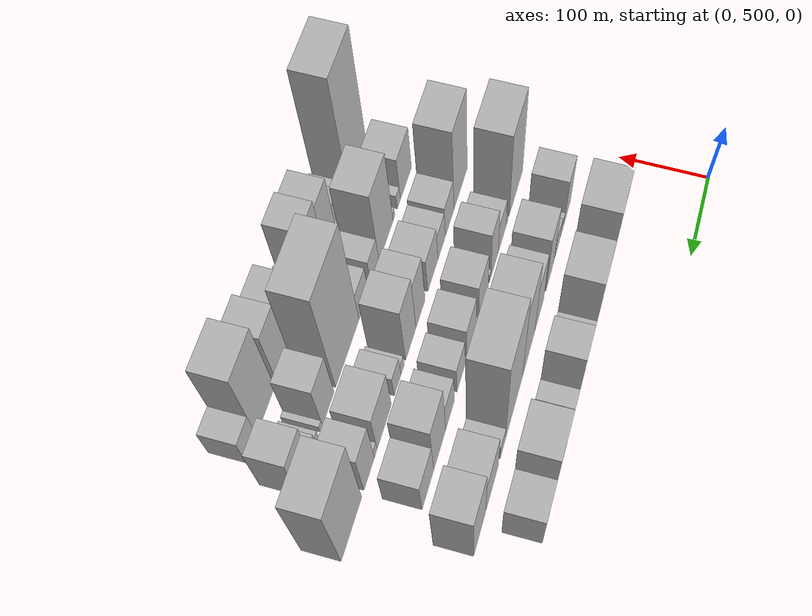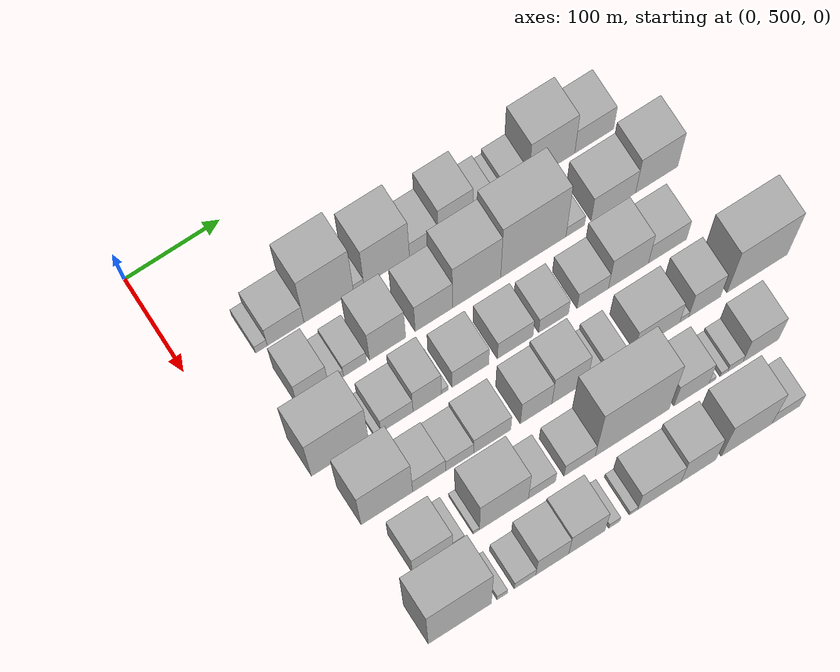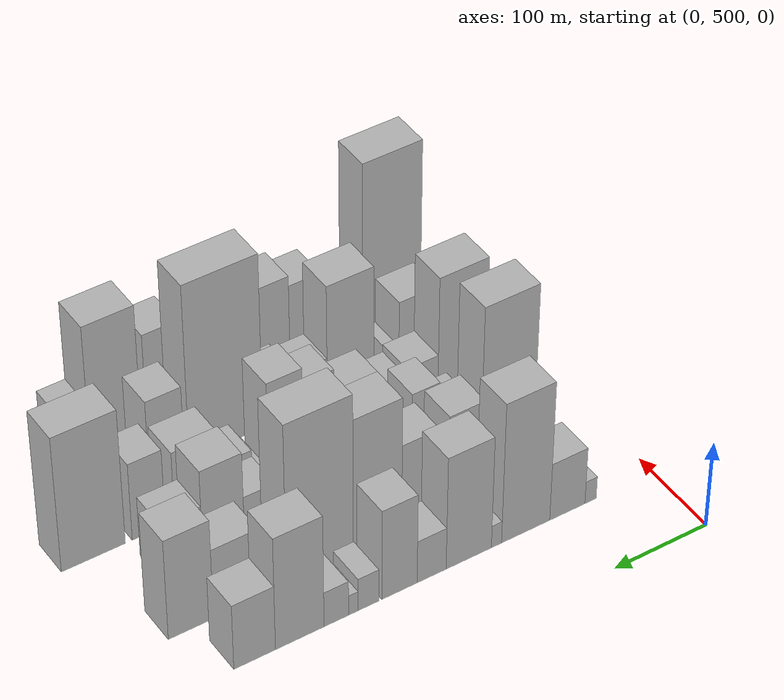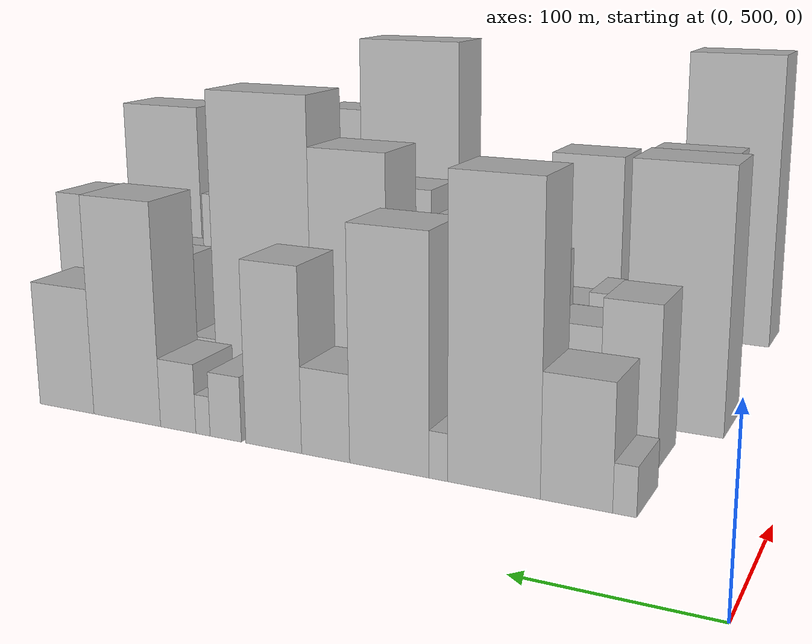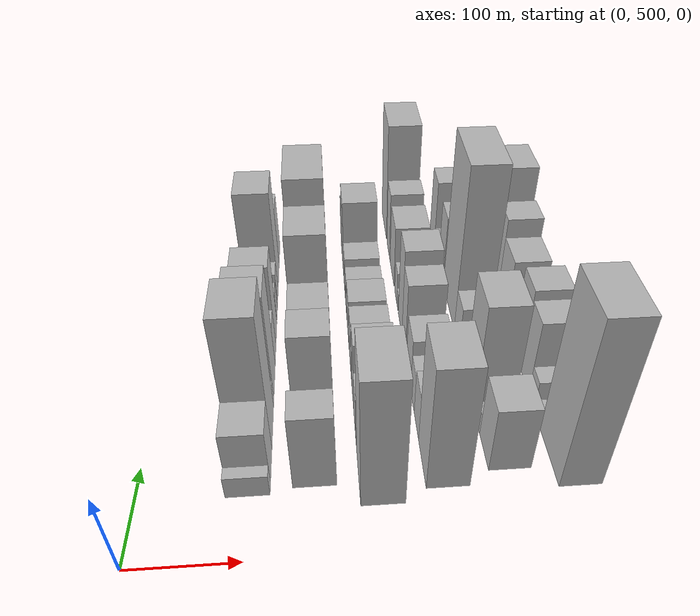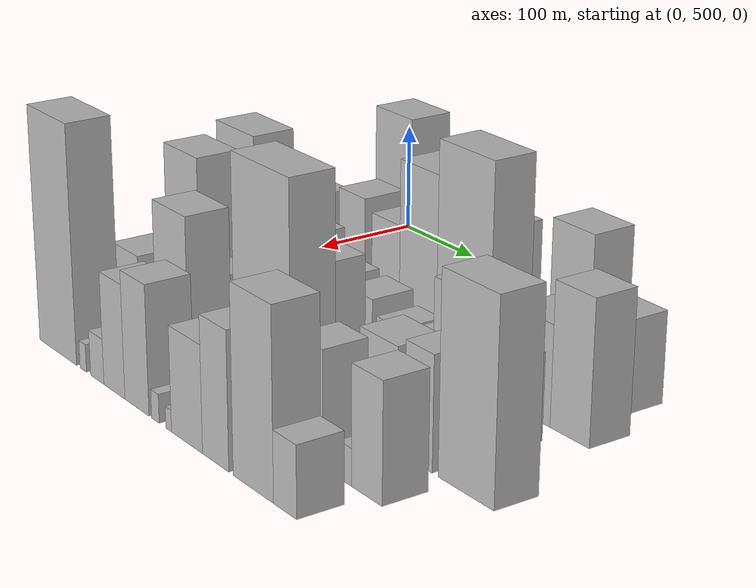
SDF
<sdf version="1.6">
 <world name="default">
  <model name="building_51">
   <static>1</static>
   <pose>100.0000 568.8188 0 0.000000 0.000000 0.000000</pose>
   <link name="link">
    <pose>0 0 13.50 0 0 0</pose>
    <collision name="collision"><geometry><box><size>40.0000 12.3887 27.0000</size></box></geometry></collision>
    <visual name="visual">
     <cast_shadows>0</cast_shadows>
     <geometry><box><size>40.0000 12.3887 27.0000</size></box></geometry>
     <material>
      <script>
       <uri>model://HANNAS_wall/materials/scripts</uri>
       <uri>model://HANNAS_wall/materials/textures</uri>
       <name>vrc/HANNAS_wall</name>
      </script>
     </material>
    </visual>
   </link>
  </model>
  <model name="building_52">
   <static>1</static>
   <pose>100.0000 594.2181 0 0.000000 0.000000 0.000000</pose>
   <link name="link">
    <pose>0 0 34.50 0 0 0</pose>
    <collision name="collision"><geometry><box><size>40.0000 38.4099 69.0000</size></box></geometry></collision>
    <visual name="visual">
     <cast_shadows>0</cast_shadows>
     <geometry><box><size>40.0000 38.4099 69.0000</size></box></geometry>
     <material>
      <script>
       <uri>model://HANNAS_wall/materials/scripts</uri>
       <uri>model://HANNAS_wall/materials/textures</uri>
       <name>vrc/HANNAS_wall</name>
      </script>
     </material>
    </visual>
   </link>
  </model>
  <model name="building_53">
   <static>1</static>
   <pose>100.0000 639.3999 0 0.000000 0.000000 0.000000</pose>
   <link name="link">
    <pose>0 0 84.00 0 0 0</pose>
    <collision name="collision"><geometry><box><size>40.0000 51.9538 168.0000</size></box></geometry></collision>
    <visual name="visual">
     <cast_shadows>0</cast_shadows>
     <geometry><box><size>40.0000 51.9538 168.0000</size></box></geometry>
     <material>
      <script>
       <uri>model://HANNAS_wall/materials/scripts</uri>
       <uri>model://HANNAS_wall/materials/textures</uri>
       <name>vrc/HANNAS_wall</name>
      </script>
     </material>
    </visual>
   </link>
  </model>
  <model name="building_54">
   <static>1</static>
   <pose>100.0000 670.7902 0 0.000000 0.000000 0.000000</pose>
   <link name="link">
    <pose>0 0 13.50 0 0 0</pose>
    <collision name="collision"><geometry><box><size>40.0000 10.8269 27.0000</size></box></geometry></collision>
    <visual name="visual">
     <cast_shadows>0</cast_shadows>
     <geometry><box><size>40.0000 10.8269 27.0000</size></box></geometry>
     <material>
      <script>
       <uri>model://HANNAS_wall/materials/scripts</uri>
       <uri>model://HANNAS_wall/materials/textures</uri>
       <name>vrc/HANNAS_wall</name>
      </script>
     </material>
    </visual>
   </link>
  </model>
  <model name="building_55">
   <static>1</static>
   <pose>100.0000 700.2312 0 0.000000 0.000000 0.000000</pose>
   <link name="link">
    <pose>0 0 67.50 0 0 0</pose>
    <collision name="collision"><geometry><box><size>40.0000 48.0550 135.0000</size></box></geometry></collision>
    <visual name="visual">
     <cast_shadows>0</cast_shadows>
     <geometry><box><size>40.0000 48.0550 135.0000</size></box></geometry>
     <material>
      <script>
       <uri>model://HANNAS_wall/materials/scripts</uri>
       <uri>model://HANNAS_wall/materials/textures</uri>
       <name>vrc/HANNAS_wall</name>
      </script>
     </material>
    </visual>
   </link>
  </model>
  <model name="building_56">
   <static>1</static>
   <pose>100.0000 739.4798 0 0.000000 0.000000 0.000000</pose>
   <link name="link">
    <pose>0 0 25.50 0 0 0</pose>
    <collision name="collision"><geometry><box><size>40.0000 30.4422 51.0000</size></box></geometry></collision>
    <visual name="visual">
     <cast_shadows>0</cast_shadows>
     <geometry><box><size>40.0000 30.4422 51.0000</size></box></geometry>
     <material>
      <script>
       <uri>model://HANNAS_wall/materials/scripts</uri>
       <uri>model://HANNAS_wall/materials/textures</uri>
       <name>vrc/HANNAS_wall</name>
      </script>
     </material>
    </visual>
   </link>
  </model>
  <model name="building_57">
   <static>1</static>
   <pose>100.0000 773.0551 0 0.000000 0.000000 0.000000</pose>
   <link name="link">
    <pose>0 0 54.00 0 0 0</pose>
    <collision name="collision"><geometry><box><size>40.0000 36.7085 108.0000</size></box></geometry></collision>
    <visual name="visual">
     <cast_shadows>0</cast_shadows>
     <geometry><box><size>40.0000 36.7085 108.0000</size></box></geometry>
     <material>
      <script>
       <uri>model://HANNAS_wall/materials/scripts</uri>
       <uri>model://HANNAS_wall/materials/textures</uri>
       <name>vrc/HANNAS_wall</name>
      </script>
     </material>
    </visual>
   </link>
  </model>
  <model name="building_58">
   <static>1</static>
   <pose>100.0000 805.1073 0 0.000000 0.000000 0.000000</pose>
   <link name="link">
    <pose>0 0 19.50 0 0 0</pose>
    <collision name="collision"><geometry><box><size>40.0000 21.3959 39.0000</size></box></geometry></collision>
    <visual name="visual">
     <cast_shadows>0</cast_shadows>
     <geometry><box><size>40.0000 21.3959 39.0000</size></box></geometry>
     <material>
      <script>
       <uri>model://HANNAS_wall/materials/scripts</uri>
       <uri>model://HANNAS_wall/materials/textures</uri>
       <name>vrc/HANNAS_wall</name>
      </script>
     </material>
    </visual>
   </link>
  </model>
  <model name="building_59">
   <static>1</static>
   <pose>100.0000 820.7397 0 0.000000 0.000000 0.000000</pose>
   <link name="link">
    <pose>0 0 12.00 0 0 0</pose>
    <collision name="collision"><geometry><box><size>40.0000 9.8689 24.0000</size></box></geometry></collision>
    <visual name="visual">
     <cast_shadows>0</cast_shadows>
     <geometry><box><size>40.0000 9.8689 24.0000</size></box></geometry>
     <material>
      <script>
       <uri>model://HANNAS_wall/materials/scripts</uri>
       <uri>model://HANNAS_wall/materials/textures</uri>
       <name>vrc/HANNAS_wall</name>
      </script>
     </material>
    </visual>
   </link>
  </model>
  <model name="building_60">
   <static>1</static>
   <pose>100.0000 838.1900 0 0.000000 0.000000 0.000000</pose>
   <link name="link">
    <pose>0 0 21.00 0 0 0</pose>
    <collision name="collision"><geometry><box><size>40.0000 25.0318 42.0000</size></box></geometry></collision>
    <visual name="visual">
     <cast_shadows>0</cast_shadows>
     <geometry><box><size>40.0000 25.0318 42.0000</size></box></geometry>
     <material>
      <script>
       <uri>model://HANNAS_wall/materials/scripts</uri>
       <uri>model://HANNAS_wall/materials/textures</uri>
       <name>vrc/HANNAS_wall</name>
      </script>
     </material>
    </visual>
   </link>
  </model>
  <model name="building_61">
   <static>1</static>
   <pose>100.0000 875.2933 0 0.000000 0.000000 0.000000</pose>
   <link name="link">
    <pose>0 0 67.50 0 0 0</pose>
    <collision name="collision"><geometry><box><size>40.0000 49.1748 135.0000</size></box></geometry></collision>
    <visual name="visual">
     <cast_shadows>0</cast_shadows>
     <geometry><box><size>40.0000 49.1748 135.0000</size></box></geometry>
     <material>
      <script>
       <uri>model://HANNAS_wall/materials/scripts</uri>
       <uri>model://HANNAS_wall/materials/textures</uri>
       <name>vrc/HANNAS_wall</name>
      </script>
     </material>
    </visual>
   </link>
  </model>
  <model name="building_62">
   <static>1</static>
   <pose>100.0000 920.6999 0 0.000000 0.000000 0.000000</pose>
   <link name="link">
    <pose>0 0 39.00 0 0 0</pose>
    <collision name="collision"><geometry><box><size>40.0000 41.6384 78.0000</size></box></geometry></collision>
    <visual name="visual">
     <cast_shadows>0</cast_shadows>
     <geometry><box><size>40.0000 41.6384 78.0000</size></box></geometry>
     <material>
      <script>
       <uri>model://HANNAS_wall/materials/scripts</uri>
       <uri>model://HANNAS_wall/materials/textures</uri>
       <name>vrc/HANNAS_wall</name>
      </script>
     </material>
    </visual>
   </link>
  </model>
  <model name="building_109">
   <static>1</static>
   <pose>160.0000 584.9120 0 0.000000 0.000000 0.000000</pose>
   <link name="link">
    <pose>0 0 46.50 0 0 0</pose>
    <collision name="collision"><geometry><box><size>40.0000 32.8877 93.0000</size></box></geometry></collision>
    <visual name="visual">
     <cast_shadows>0</cast_shadows>
     <geometry><box><size>40.0000 32.8877 93.0000</size></box></geometry>
     <material>
      <script>
       <uri>model://HANNAS_wall/materials/scripts</uri>
       <uri>model://HANNAS_wall/materials/textures</uri>
       <name>vrc/HANNAS_wall</name>
      </script>
     </material>
    </visual>
   </link>
  </model>
  <model name="building_110">
   <static>1</static>
   <pose>160.0000 609.1690 0 0.000000 0.000000 0.000000</pose>
   <link name="link">
    <pose>0 0 15.00 0 0 0</pose>
    <collision name="collision"><geometry><box><size>40.0000 15.6263 30.0000</size></box></geometry></collision>
    <visual name="visual">
     <cast_shadows>0</cast_shadows>
     <geometry><box><size>40.0000 15.6263 30.0000</size></box></geometry>
     <material>
      <script>
       <uri>model://HANNAS_wall/materials/scripts</uri>
       <uri>model://HANNAS_wall/materials/textures</uri>
       <name>vrc/HANNAS_wall</name>
      </script>
     </material>
    </visual>
   </link>
  </model>
  <model name="building_111">
   <static>1</static>
   <pose>160.0000 629.0480 0 0.000000 0.000000 0.000000</pose>
   <link name="link">
    <pose>0 0 22.50 0 0 0</pose>
    <collision name="collision"><geometry><box><size>40.0000 24.1317 45.0000</size></box></geometry></collision>
    <visual name="visual">
     <cast_shadows>0</cast_shadows>
     <geometry><box><size>40.0000 24.1317 45.0000</size></box></geometry>
     <material>
      <script>
       <uri>model://HANNAS_wall/materials/scripts</uri>
       <uri>model://HANNAS_wall/materials/textures</uri>
       <name>vrc/HANNAS_wall</name>
      </script>
     </material>
    </visual>
   </link>
  </model>
  <model name="building_112">
   <static>1</static>
   <pose>160.0000 663.0850 0 0.000000 0.000000 0.000000</pose>
   <link name="link">
    <pose>0 0 57.00 0 0 0</pose>
    <collision name="collision"><geometry><box><size>40.0000 37.9422 114.0000</size></box></geometry></collision>
    <visual name="visual">
     <cast_shadows>0</cast_shadows>
     <geometry><box><size>40.0000 37.9422 114.0000</size></box></geometry>
     <material>
      <script>
       <uri>model://HANNAS_wall/materials/scripts</uri>
       <uri>model://HANNAS_wall/materials/textures</uri>
       <name>vrc/HANNAS_wall</name>
      </script>
     </material>
    </visual>
   </link>
  </model>
  <model name="building_113">
   <static>1</static>
   <pose>160.0000 711.7422 0 0.000000 0.000000 0.000000</pose>
   <link name="link">
    <pose>0 0 52.50 0 0 0</pose>
    <collision name="collision"><geometry><box><size>40.0000 39.3722 105.0000</size></box></geometry></collision>
    <visual name="visual">
     <cast_shadows>0</cast_shadows>
     <geometry><box><size>40.0000 39.3722 105.0000</size></box></geometry>
     <material>
      <script>
       <uri>model://HANNAS_wall/materials/scripts</uri>
       <uri>model://HANNAS_wall/materials/textures</uri>
       <name>vrc/HANNAS_wall</name>
      </script>
     </material>
    </visual>
   </link>
  </model>
  <model name="building_114">
   <static>1</static>
   <pose>160.0000 756.8263 0 0.000000 0.000000 0.000000</pose>
   <link name="link">
    <pose>0 0 81.00 0 0 0</pose>
    <collision name="collision"><geometry><box><size>40.0000 50.7960 162.0000</size></box></geometry></collision>
    <visual name="visual">
     <cast_shadows>0</cast_shadows>
     <geometry><box><size>40.0000 50.7960 162.0000</size></box></geometry>
     <material>
      <script>
       <uri>model://HANNAS_wall/materials/scripts</uri>
       <uri>model://HANNAS_wall/materials/textures</uri>
       <name>vrc/HANNAS_wall</name>
      </script>
     </material>
    </visual>
   </link>
  </model>
  <model name="building_115">
   <static>1</static>
   <pose>160.0000 816.8667 0 0.000000 0.000000 0.000000</pose>
   <link name="link">
    <pose>0 0 96.00 0 0 0</pose>
    <collision name="collision"><geometry><box><size>40.0000 69.2849 192.0000</size></box></geometry></collision>
    <visual name="visual">
     <cast_shadows>0</cast_shadows>
     <geometry><box><size>40.0000 69.2849 192.0000</size></box></geometry>
     <material>
      <script>
       <uri>model://HANNAS_wall/materials/scripts</uri>
       <uri>model://HANNAS_wall/materials/textures</uri>
       <name>vrc/HANNAS_wall</name>
      </script>
     </material>
    </visual>
   </link>
  </model>
  <model name="building_116">
   <static>1</static>
   <pose>160.0000 861.3862 0 0.000000 0.000000 0.000000</pose>
   <link name="link">
    <pose>0 0 18.00 0 0 0</pose>
    <collision name="collision"><geometry><box><size>40.0000 19.7540 36.0000</size></box></geometry></collision>
    <visual name="visual">
     <cast_shadows>0</cast_shadows>
     <geometry><box><size>40.0000 19.7540 36.0000</size></box></geometry>
     <material>
      <script>
       <uri>model://HANNAS_wall/materials/scripts</uri>
       <uri>model://HANNAS_wall/materials/textures</uri>
       <name>vrc/HANNAS_wall</name>
      </script>
     </material>
    </visual>
   </link>
  </model>
  <model name="building_117">
   <static>1</static>
   <pose>160.0000 901.9745 0 0.000000 0.000000 0.000000</pose>
   <link name="link">
    <pose>0 0 42.00 0 0 0</pose>
    <collision name="collision"><geometry><box><size>40.0000 47.4226 84.0000</size></box></geometry></collision>
    <visual name="visual">
     <cast_shadows>0</cast_shadows>
     <geometry><box><size>40.0000 47.4226 84.0000</size></box></geometry>
     <material>
      <script>
       <uri>model://HANNAS_wall/materials/scripts</uri>
       <uri>model://HANNAS_wall/materials/textures</uri>
       <name>vrc/HANNAS_wall</name>
      </script>
     </material>
    </visual>
   </link>
  </model>
  <model name="building_118">
   <static>1</static>
   <pose>160.0000 948.2440 0 0.000000 0.000000 0.000000</pose>
   <link name="link">
    <pose>0 0 60.00 0 0 0</pose>
    <collision name="collision"><geometry><box><size>40.0000 45.1164 120.0000</size></box></geometry></collision>
    <visual name="visual">
     <cast_shadows>0</cast_shadows>
     <geometry><box><size>40.0000 45.1164 120.0000</size></box></geometry>
     <material>
      <script>
       <uri>model://HANNAS_wall/materials/scripts</uri>
       <uri>model://HANNAS_wall/materials/textures</uri>
       <name>vrc/HANNAS_wall</name>
      </script>
     </material>
    </visual>
   </link>
  </model>
  <model name="building_164">
   <static>1</static>
   <pose>220.0000 575.2471 0 0.000000 0.000000 0.000000</pose>
   <link name="link">
    <pose>0 0 79.50 0 0 0</pose>
    <collision name="collision"><geometry><box><size>40.0000 59.6200 159.0000</size></box></geometry></collision>
    <visual name="visual">
     <cast_shadows>0</cast_shadows>
     <geometry><box><size>40.0000 59.6200 159.0000</size></box></geometry>
     <material>
      <script>
       <uri>model://HANNAS_wall/materials/scripts</uri>
       <uri>model://HANNAS_wall/materials/textures</uri>
       <name>vrc/HANNAS_wall</name>
      </script>
     </material>
    </visual>
   </link>
  </model>
  <model name="building_165">
   <static>1</static>
   <pose>220.0000 614.4548 0 0.000000 0.000000 0.000000</pose>
   <link name="link">
    <pose>0 0 7.50 0 0 0</pose>
    <collision name="collision"><geometry><box><size>40.0000 6.7954 15.0000</size></box></geometry></collision>
    <visual name="visual">
     <cast_shadows>0</cast_shadows>
     <geometry><box><size>40.0000 6.7954 15.0000</size></box></geometry>
     <material>
      <script>
       <uri>model://HANNAS_wall/materials/scripts</uri>
       <uri>model://HANNAS_wall/materials/textures</uri>
       <name>vrc/HANNAS_wall</name>
      </script>
     </material>
    </visual>
   </link>
  </model>
  <model name="building_166">
   <static>1</static>
   <pose>220.0000 634.6829 0 0.000000 0.000000 0.000000</pose>
   <link name="link">
    <pose>0 0 28.50 0 0 0</pose>
    <collision name="collision"><geometry><box><size>40.0000 33.6609 57.0000</size></box></geometry></collision>
    <visual name="visual">
     <cast_shadows>0</cast_shadows>
     <geometry><box><size>40.0000 33.6609 57.0000</size></box></geometry>
     <material>
      <script>
       <uri>model://HANNAS_wall/materials/scripts</uri>
       <uri>model://HANNAS_wall/materials/textures</uri>
       <name>vrc/HANNAS_wall</name>
      </script>
     </material>
    </visual>
   </link>
  </model>
  <model name="building_167">
   <static>1</static>
   <pose>220.0000 666.3958 0 0.000000 0.000000 0.000000</pose>
   <link name="link">
    <pose>0 0 46.50 0 0 0</pose>
    <collision name="collision"><geometry><box><size>40.0000 29.7648 93.0000</size></box></geometry></collision>
    <visual name="visual">
     <cast_shadows>0</cast_shadows>
     <geometry><box><size>40.0000 29.7648 93.0000</size></box></geometry>
     <material>
      <script>
       <uri>model://HANNAS_wall/materials/scripts</uri>
       <uri>model://HANNAS_wall/materials/textures</uri>
       <name>vrc/HANNAS_wall</name>
      </script>
     </material>
    </visual>
   </link>
  </model>
  <model name="building_168">
   <static>1</static>
   <pose>220.0000 684.8954 0 0.000000 0.000000 0.000000</pose>
   <link name="link">
    <pose>0 0 9.00 0 0 0</pose>
    <collision name="collision"><geometry><box><size>40.0000 7.2344 18.0000</size></box></geometry></collision>
    <visual name="visual">
     <cast_shadows>0</cast_shadows>
     <geometry><box><size>40.0000 7.2344 18.0000</size></box></geometry>
     <material>
      <script>
       <uri>model://HANNAS_wall/materials/scripts</uri>
       <uri>model://HANNAS_wall/materials/textures</uri>
       <name>vrc/HANNAS_wall</name>
      </script>
     </material>
    </visual>
   </link>
  </model>
  <model name="building_169">
   <static>1</static>
   <pose>220.0000 711.7652 0 0.000000 0.000000 0.000000</pose>
   <link name="link">
    <pose>0 0 36.00 0 0 0</pose>
    <collision name="collision"><geometry><box><size>40.0000 38.5053 72.0000</size></box></geometry></collision>
    <visual name="visual">
     <cast_shadows>0</cast_shadows>
     <geometry><box><size>40.0000 38.5053 72.0000</size></box></geometry>
     <material>
      <script>
       <uri>model://HANNAS_wall/materials/scripts</uri>
       <uri>model://HANNAS_wall/materials/textures</uri>
       <name>vrc/HANNAS_wall</name>
      </script>
     </material>
    </visual>
   </link>
  </model>
  <model name="building_170">
   <static>1</static>
   <pose>220.0000 758.7957 0 0.000000 0.000000 0.000000</pose>
   <link name="link">
    <pose>0 0 34.50 0 0 0</pose>
    <collision name="collision"><geometry><box><size>40.0000 37.5557 69.0000</size></box></geometry></collision>
    <visual name="visual">
     <cast_shadows>0</cast_shadows>
     <geometry><box><size>40.0000 37.5557 69.0000</size></box></geometry>
     <material>
      <script>
       <uri>model://HANNAS_wall/materials/scripts</uri>
       <uri>model://HANNAS_wall/materials/textures</uri>
       <name>vrc/HANNAS_wall</name>
      </script>
     </material>
    </visual>
   </link>
  </model>
  <model name="building_171">
   <static>1</static>
   <pose>220.0000 799.3891 0 0.000000 0.000000 0.000000</pose>
   <link name="link">
    <pose>0 0 28.50 0 0 0</pose>
    <collision name="collision"><geometry><box><size>40.0000 31.6310 57.0000</size></box></geometry></collision>
    <visual name="visual">
     <cast_shadows>0</cast_shadows>
     <geometry><box><size>40.0000 31.6310 57.0000</size></box></geometry>
     <material>
      <script>
       <uri>model://HANNAS_wall/materials/scripts</uri>
       <uri>model://HANNAS_wall/materials/textures</uri>
       <name>vrc/HANNAS_wall</name>
      </script>
     </material>
    </visual>
   </link>
  </model>
  <model name="building_172">
   <static>1</static>
   <pose>220.0000 840.8275 0 0.000000 0.000000 0.000000</pose>
   <link name="link">
    <pose>0 0 30.00 0 0 0</pose>
    <collision name="collision"><geometry><box><size>40.0000 33.2458 60.0000</size></box></geometry></collision>
    <visual name="visual">
     <cast_shadows>0</cast_shadows>
     <geometry><box><size>40.0000 33.2458 60.0000</size></box></geometry>
     <material>
      <script>
       <uri>model://HANNAS_wall/materials/scripts</uri>
       <uri>model://HANNAS_wall/materials/textures</uri>
       <name>vrc/HANNAS_wall</name>
      </script>
     </material>
    </visual>
   </link>
  </model>
  <model name="building_173">
   <static>1</static>
   <pose>220.0000 878.7374 0 0.000000 0.000000 0.000000</pose>
   <link name="link">
    <pose>0 0 57.00 0 0 0</pose>
    <collision name="collision"><geometry><box><size>40.0000 42.5741 114.0000</size></box></geometry></collision>
    <visual name="visual">
     <cast_shadows>0</cast_shadows>
     <geometry><box><size>40.0000 42.5741 114.0000</size></box></geometry>
     <material>
      <script>
       <uri>model://HANNAS_wall/materials/scripts</uri>
       <uri>model://HANNAS_wall/materials/textures</uri>
       <name>vrc/HANNAS_wall</name>
      </script>
     </material>
    </visual>
   </link>
  </model>
  <model name="building_174">
   <static>1</static>
   <pose>220.0000 920.3426 0 0.000000 0.000000 0.000000</pose>
   <link name="link">
    <pose>0 0 36.00 0 0 0</pose>
    <collision name="collision"><geometry><box><size>40.0000 40.6361 72.0000</size></box></geometry></collision>
    <visual name="visual">
     <cast_shadows>0</cast_shadows>
     <geometry><box><size>40.0000 40.6361 72.0000</size></box></geometry>
     <material>
      <script>
       <uri>model://HANNAS_wall/materials/scripts</uri>
       <uri>model://HANNAS_wall/materials/textures</uri>
       <name>vrc/HANNAS_wall</name>
      </script>
     </material>
    </visual>
   </link>
  </model>
  <model name="building_216">
   <static>1</static>
   <pose>280.0000 585.9968 0 0.000000 0.000000 0.000000</pose>
   <link name="link">
    <pose>0 0 76.50 0 0 0</pose>
    <collision name="collision"><geometry><box><size>40.0000 53.7051 153.0000</size></box></geometry></collision>
    <visual name="visual">
     <cast_shadows>0</cast_shadows>
     <geometry><box><size>40.0000 53.7051 153.0000</size></box></geometry>
     <material>
      <script>
       <uri>model://HANNAS_wall/materials/scripts</uri>
       <uri>model://HANNAS_wall/materials/textures</uri>
       <name>vrc/HANNAS_wall</name>
      </script>
     </material>
    </visual>
   </link>
  </model>
  <model name="building_217">
   <static>1</static>
   <pose>280.0000 630.0497 0 0.000000 0.000000 0.000000</pose>
   <link name="link">
    <pose>0 0 30.00 0 0 0</pose>
    <collision name="collision"><geometry><box><size>40.0000 34.4007 60.0000</size></box></geometry></collision>
    <visual name="visual">
     <cast_shadows>0</cast_shadows>
     <geometry><box><size>40.0000 34.4007 60.0000</size></box></geometry>
     <material>
      <script>
       <uri>model://HANNAS_wall/materials/scripts</uri>
       <uri>model://HANNAS_wall/materials/textures</uri>
       <name>vrc/HANNAS_wall</name>
      </script>
     </material>
    </visual>
   </link>
  </model>
  <model name="building_218">
   <static>1</static>
   <pose>280.0000 661.9063 0 0.000000 0.000000 0.000000</pose>
   <link name="link">
    <pose>0 0 25.50 0 0 0</pose>
    <collision name="collision"><geometry><box><size>40.0000 29.3125 51.0000</size></box></geometry></collision>
    <visual name="visual">
     <cast_shadows>0</cast_shadows>
     <geometry><box><size>40.0000 29.3125 51.0000</size></box></geometry>
     <material>
      <script>
       <uri>model://HANNAS_wall/materials/scripts</uri>
       <uri>model://HANNAS_wall/materials/textures</uri>
       <name>vrc/HANNAS_wall</name>
      </script>
     </material>
    </visual>
   </link>
  </model>
  <model name="building_219">
   <static>1</static>
   <pose>280.0000 696.0085 0 0.000000 0.000000 0.000000</pose>
   <link name="link">
    <pose>0 0 34.50 0 0 0</pose>
    <collision name="collision"><geometry><box><size>40.0000 38.8919 69.0000</size></box></geometry></collision>
    <visual name="visual">
     <cast_shadows>0</cast_shadows>
     <geometry><box><size>40.0000 38.8919 69.0000</size></box></geometry>
     <material>
      <script>
       <uri>model://HANNAS_wall/materials/scripts</uri>
       <uri>model://HANNAS_wall/materials/textures</uri>
       <name>vrc/HANNAS_wall</name>
      </script>
     </material>
    </visual>
   </link>
  </model>
  <model name="building_220">
   <static>1</static>
   <pose>280.0000 742.0530 0 0.000000 0.000000 0.000000</pose>
   <link name="link">
    <pose>0 0 49.50 0 0 0</pose>
    <collision name="collision"><geometry><box><size>40.0000 33.1972 99.0000</size></box></geometry></collision>
    <visual name="visual">
     <cast_shadows>0</cast_shadows>
     <geometry><box><size>40.0000 33.1972 99.0000</size></box></geometry>
     <material>
      <script>
       <uri>model://HANNAS_wall/materials/scripts</uri>
       <uri>model://HANNAS_wall/materials/textures</uri>
       <name>vrc/HANNAS_wall</name>
      </script>
     </material>
    </visual>
   </link>
  </model>
  <model name="building_221">
   <static>1</static>
   <pose>280.0000 777.3565 0 0.000000 0.000000 0.000000</pose>
   <link name="link">
    <pose>0 0 58.50 0 0 0</pose>
    <collision name="collision"><geometry><box><size>40.0000 37.4099 117.0000</size></box></geometry></collision>
    <visual name="visual">
     <cast_shadows>0</cast_shadows>
     <geometry><box><size>40.0000 37.4099 117.0000</size></box></geometry>
     <material>
      <script>
       <uri>model://HANNAS_wall/materials/scripts</uri>
       <uri>model://HANNAS_wall/materials/textures</uri>
       <name>vrc/HANNAS_wall</name>
      </script>
     </material>
    </visual>
   </link>
  </model>
  <model name="building_222">
   <static>1</static>
   <pose>280.0000 806.9103 0 0.000000 0.000000 0.000000</pose>
   <link name="link">
    <pose>0 0 12.00 0 0 0</pose>
    <collision name="collision"><geometry><box><size>40.0000 11.6977 24.0000</size></box></geometry></collision>
    <visual name="visual">
     <cast_shadows>0</cast_shadows>
     <geometry><box><size>40.0000 11.6977 24.0000</size></box></geometry>
     <material>
      <script>
       <uri>model://HANNAS_wall/materials/scripts</uri>
       <uri>model://HANNAS_wall/materials/textures</uri>
       <name>vrc/HANNAS_wall</name>
      </script>
     </material>
    </visual>
   </link>
  </model>
  <model name="building_223">
   <static>1</static>
   <pose>280.0000 824.3718 0 0.000000 0.000000 0.000000</pose>
   <link name="link">
    <pose>0 0 22.50 0 0 0</pose>
    <collision name="collision"><geometry><box><size>40.0000 23.2253 45.0000</size></box></geometry></collision>
    <visual name="visual">
     <cast_shadows>0</cast_shadows>
     <geometry><box><size>40.0000 23.2253 45.0000</size></box></geometry>
     <material>
      <script>
       <uri>model://HANNAS_wall/materials/scripts</uri>
       <uri>model://HANNAS_wall/materials/textures</uri>
       <name>vrc/HANNAS_wall</name>
      </script>
     </material>
    </visual>
   </link>
  </model>
  <model name="building_224">
   <static>1</static>
   <pose>280.0000 869.9280 0 0.000000 0.000000 0.000000</pose>
   <link name="link">
    <pose>0 0 42.00 0 0 0</pose>
    <collision name="collision"><geometry><box><size>40.0000 47.8871 84.0000</size></box></geometry></collision>
    <visual name="visual">
     <cast_shadows>0</cast_shadows>
     <geometry><box><size>40.0000 47.8871 84.0000</size></box></geometry>
     <material>
      <script>
       <uri>model://HANNAS_wall/materials/scripts</uri>
       <uri>model://HANNAS_wall/materials/textures</uri>
       <name>vrc/HANNAS_wall</name>
      </script>
     </material>
    </visual>
   </link>
  </model>
  <model name="building_225">
   <static>1</static>
   <pose>280.0000 898.6240 0 0.000000 0.000000 0.000000</pose>
   <link name="link">
    <pose>0 0 10.50 0 0 0</pose>
    <collision name="collision"><geometry><box><size>40.0000 9.5049 21.0000</size></box></geometry></collision>
    <visual name="visual">
     <cast_shadows>0</cast_shadows>
     <geometry><box><size>40.0000 9.5049 21.0000</size></box></geometry>
     <material>
      <script>
       <uri>model://HANNAS_wall/materials/scripts</uri>
       <uri>model://HANNAS_wall/materials/textures</uri>
       <name>vrc/HANNAS_wall</name>
      </script>
     </material>
    </visual>
   </link>
  </model>
  <model name="building_226">
   <static>1</static>
   <pose>280.0000 920.2927 0 0.000000 0.000000 0.000000</pose>
   <link name="link">
    <pose>0 0 46.50 0 0 0</pose>
    <collision name="collision"><geometry><box><size>40.0000 33.8324 93.0000</size></box></geometry></collision>
    <visual name="visual">
     <cast_shadows>0</cast_shadows>
     <geometry><box><size>40.0000 33.8324 93.0000</size></box></geometry>
     <material>
      <script>
       <uri>model://HANNAS_wall/materials/scripts</uri>
       <uri>model://HANNAS_wall/materials/textures</uri>
       <name>vrc/HANNAS_wall</name>
      </script>
     </material>
    </visual>
   </link>
  </model>
  <model name="building_227">
   <static>1</static>
   <pose>280.0000 976.4696 0 0.000000 0.000000 0.000000</pose>
   <link name="link">
    <pose>0 0 81.00 0 0 0</pose>
    <collision name="collision"><geometry><box><size>40.0000 64.5214 162.0000</size></box></geometry></collision>
    <visual name="visual">
     <cast_shadows>0</cast_shadows>
     <geometry><box><size>40.0000 64.5214 162.0000</size></box></geometry>
     <material>
      <script>
       <uri>model://HANNAS_wall/materials/scripts</uri>
       <uri>model://HANNAS_wall/materials/textures</uri>
       <name>vrc/HANNAS_wall</name>
      </script>
     </material>
    </visual>
   </link>
  </model>
  <model name="building_273">
   <static>1</static>
   <pose>340.0000 595.2553 0 0.000000 0.000000 0.000000</pose>
   <link name="link">
    <pose>0 0 40.50 0 0 0</pose>
    <collision name="collision"><geometry><box><size>40.0000 42.1156 81.0000</size></box></geometry></collision>
    <visual name="visual">
     <cast_shadows>0</cast_shadows>
     <geometry><box><size>40.0000 42.1156 81.0000</size></box></geometry>
     <material>
      <script>
       <uri>model://HANNAS_wall/materials/scripts</uri>
       <uri>model://HANNAS_wall/materials/textures</uri>
       <name>vrc/HANNAS_wall</name>
      </script>
     </material>
    </visual>
   </link>
  </model>
  <model name="building_274">
   <static>1</static>
   <pose>340.0000 622.3568 0 0.000000 0.000000 0.000000</pose>
   <link name="link">
    <pose>0 0 13.50 0 0 0</pose>
    <collision name="collision"><geometry><box><size>40.0000 12.0874 27.0000</size></box></geometry></collision>
    <visual name="visual">
     <cast_shadows>0</cast_shadows>
     <geometry><box><size>40.0000 12.0874 27.0000</size></box></geometry>
     <material>
      <script>
       <uri>model://HANNAS_wall/materials/scripts</uri>
       <uri>model://HANNAS_wall/materials/textures</uri>
       <name>vrc/HANNAS_wall</name>
      </script>
     </material>
    </visual>
   </link>
  </model>
  <model name="building_275">
   <static>1</static>
   <pose>340.0000 640.7154 0 0.000000 0.000000 0.000000</pose>
   <link name="link">
    <pose>0 0 7.50 0 0 0</pose>
    <collision name="collision"><geometry><box><size>40.0000 6.6297 15.0000</size></box></geometry></collision>
    <visual name="visual">
     <cast_shadows>0</cast_shadows>
     <geometry><box><size>40.0000 6.6297 15.0000</size></box></geometry>
     <material>
      <script>
       <uri>model://HANNAS_wall/materials/scripts</uri>
       <uri>model://HANNAS_wall/materials/textures</uri>
       <name>vrc/HANNAS_wall</name>
      </script>
     </material>
    </visual>
   </link>
  </model>
  <model name="building_276">
   <static>1</static>
   <pose>340.0000 669.5659 0 0.000000 0.000000 0.000000</pose>
   <link name="link">
    <pose>0 0 69.00 0 0 0</pose>
    <collision name="collision"><geometry><box><size>40.0000 51.0714 138.0000</size></box></geometry></collision>
    <visual name="visual">
     <cast_shadows>0</cast_shadows>
     <geometry><box><size>40.0000 51.0714 138.0000</size></box></geometry>
     <material>
      <script>
       <uri>model://HANNAS_wall/materials/scripts</uri>
       <uri>model://HANNAS_wall/materials/textures</uri>
       <name>vrc/HANNAS_wall</name>
      </script>
     </material>
    </visual>
   </link>
  </model>
  <model name="building_277">
   <static>1</static>
   <pose>340.0000 709.2670 0 0.000000 0.000000 0.000000</pose>
   <link name="link">
    <pose>0 0 25.50 0 0 0</pose>
    <collision name="collision"><geometry><box><size>40.0000 28.3308 51.0000</size></box></geometry></collision>
    <visual name="visual">
     <cast_shadows>0</cast_shadows>
     <geometry><box><size>40.0000 28.3308 51.0000</size></box></geometry>
     <material>
      <script>
       <uri>model://HANNAS_wall/materials/scripts</uri>
       <uri>model://HANNAS_wall/materials/textures</uri>
       <name>vrc/HANNAS_wall</name>
      </script>
     </material>
    </visual>
   </link>
  </model>
  <model name="building_278">
   <static>1</static>
   <pose>340.0000 748.7414 0 0.000000 0.000000 0.000000</pose>
   <link name="link">
    <pose>0 0 28.50 0 0 0</pose>
    <collision name="collision"><geometry><box><size>40.0000 32.6182 57.0000</size></box></geometry></collision>
    <visual name="visual">
     <cast_shadows>0</cast_shadows>
     <geometry><box><size>40.0000 32.6182 57.0000</size></box></geometry>
     <material>
      <script>
       <uri>model://HANNAS_wall/materials/scripts</uri>
       <uri>model://HANNAS_wall/materials/textures</uri>
       <name>vrc/HANNAS_wall</name>
      </script>
     </material>
    </visual>
   </link>
  </model>
  <model name="building_279">
   <static>1</static>
   <pose>340.0000 804.0903 0 0.000000 0.000000 0.000000</pose>
   <link name="link">
    <pose>0 0 105.00 0 0 0</pose>
    <collision name="collision"><geometry><box><size>40.0000 78.0797 210.0000</size></box></geometry></collision>
    <visual name="visual">
     <cast_shadows>0</cast_shadows>
     <geometry><box><size>40.0000 78.0797 210.0000</size></box></geometry>
     <material>
      <script>
       <uri>model://HANNAS_wall/materials/scripts</uri>
       <uri>model://HANNAS_wall/materials/textures</uri>
       <name>vrc/HANNAS_wall</name>
      </script>
     </material>
    </visual>
   </link>
  </model>
  <model name="building_280">
   <static>1</static>
   <pose>340.0000 866.5908 0 0.000000 0.000000 0.000000</pose>
   <link name="link">
    <pose>0 0 46.50 0 0 0</pose>
    <collision name="collision"><geometry><box><size>40.0000 36.9213 93.0000</size></box></geometry></collision>
    <visual name="visual">
     <cast_shadows>0</cast_shadows>
     <geometry><box><size>40.0000 36.9213 93.0000</size></box></geometry>
     <material>
      <script>
       <uri>model://HANNAS_wall/materials/scripts</uri>
       <uri>model://HANNAS_wall/materials/textures</uri>
       <name>vrc/HANNAS_wall</name>
      </script>
     </material>
    </visual>
   </link>
  </model>
  <model name="building_281">
   <static>1</static>
   <pose>340.0000 888.6151 0 0.000000 0.000000 0.000000</pose>
   <link name="link">
    <pose>0 0 7.50 0 0 0</pose>
    <collision name="collision"><geometry><box><size>40.0000 7.1273 15.0000</size></box></geometry></collision>
    <visual name="visual">
     <cast_shadows>0</cast_shadows>
     <geometry><box><size>40.0000 7.1273 15.0000</size></box></geometry>
     <material>
      <script>
       <uri>model://HANNAS_wall/materials/scripts</uri>
       <uri>model://HANNAS_wall/materials/textures</uri>
       <name>vrc/HANNAS_wall</name>
      </script>
     </material>
    </visual>
   </link>
  </model>
  <model name="building_282">
   <static>1</static>
   <pose>340.0000 901.1912 0 0.000000 0.000000 0.000000</pose>
   <link name="link">
    <pose>0 0 9.00 0 0 0</pose>
    <collision name="collision"><geometry><box><size>40.0000 8.0247 18.0000</size></box></geometry></collision>
    <visual name="visual">
     <cast_shadows>0</cast_shadows>
     <geometry><box><size>40.0000 8.0247 18.0000</size></box></geometry>
     <material>
      <script>
       <uri>model://HANNAS_wall/materials/scripts</uri>
       <uri>model://HANNAS_wall/materials/textures</uri>
       <name>vrc/HANNAS_wall</name>
      </script>
     </material>
    </visual>
   </link>
  </model>
  <model name="building_283">
   <static>1</static>
   <pose>340.0000 913.2871 0 0.000000 0.000000 0.000000</pose>
   <link name="link">
    <pose>0 0 15.00 0 0 0</pose>
    <collision name="collision"><geometry><box><size>40.0000 16.1671 30.0000</size></box></geometry></collision>
    <visual name="visual">
     <cast_shadows>0</cast_shadows>
     <geometry><box><size>40.0000 16.1671 30.0000</size></box></geometry>
     <material>
      <script>
       <uri>model://HANNAS_wall/materials/scripts</uri>
       <uri>model://HANNAS_wall/materials/textures</uri>
       <name>vrc/HANNAS_wall</name>
      </script>
     </material>
    </visual>
   </link>
  </model>
  <model name="building_284">
   <static>1</static>
   <pose>340.0000 940.2028 0 0.000000 0.000000 0.000000</pose>
   <link name="link">
    <pose>0 0 48.00 0 0 0</pose>
    <collision name="collision"><geometry><box><size>40.0000 37.6644 96.0000</size></box></geometry></collision>
    <visual name="visual">
     <cast_shadows>0</cast_shadows>
     <geometry><box><size>40.0000 37.6644 96.0000</size></box></geometry>
     <material>
      <script>
       <uri>model://HANNAS_wall/materials/scripts</uri>
       <uri>model://HANNAS_wall/materials/textures</uri>
       <name>vrc/HANNAS_wall</name>
      </script>
     </material>
    </visual>
   </link>
  </model>
  <model name="building_329">
   <static>1</static>
   <pose>400.0000 585.0394 0 0.000000 0.000000 0.000000</pose>
   <link name="link">
    <pose>0 0 102.00 0 0 0</pose>
    <collision name="collision"><geometry><box><size>40.0000 65.3729 204.0000</size></box></geometry></collision>
    <visual name="visual">
     <cast_shadows>0</cast_shadows>
     <geometry><box><size>40.0000 65.3729 204.0000</size></box></geometry>
     <material>
      <script>
       <uri>model://HANNAS_wall/materials/scripts</uri>
       <uri>model://HANNAS_wall/materials/textures</uri>
       <name>vrc/HANNAS_wall</name>
      </script>
     </material>
    </visual>
   </link>
  </model>
  <model name="building_330">
   <static>1</static>
   <pose>400.0000 629.1882 0 0.000000 0.000000 0.000000</pose>
   <link name="link">
    <pose>0 0 12.00 0 0 0</pose>
    <collision name="collision"><geometry><box><size>40.0000 10.9245 24.0000</size></box></geometry></collision>
    <visual name="visual">
     <cast_shadows>0</cast_shadows>
     <geometry><box><size>40.0000 10.9245 24.0000</size></box></geometry>
     <material>
      <script>
       <uri>model://HANNAS_wall/materials/scripts</uri>
       <uri>model://HANNAS_wall/materials/textures</uri>
       <name>vrc/HANNAS_wall</name>
      </script>
     </material>
    </visual>
   </link>
  </model>
  <model name="building_331">
   <static>1</static>
   <pose>400.0000 652.8266 0 0.000000 0.000000 0.000000</pose>
   <link name="link">
    <pose>0 0 19.50 0 0 0</pose>
    <collision name="collision"><geometry><box><size>40.0000 22.3524 39.0000</size></box></geometry></collision>
    <visual name="visual">
     <cast_shadows>0</cast_shadows>
     <geometry><box><size>40.0000 22.3524 39.0000</size></box></geometry>
     <material>
      <script>
       <uri>model://HANNAS_wall/materials/scripts</uri>
       <uri>model://HANNAS_wall/materials/textures</uri>
       <name>vrc/HANNAS_wall</name>
      </script>
     </material>
    </visual>
   </link>
  </model>
  <model name="building_332">
   <static>1</static>
   <pose>400.0000 681.1367 0 0.000000 0.000000 0.000000</pose>
   <link name="link">
    <pose>0 0 48.00 0 0 0</pose>
    <collision name="collision"><geometry><box><size>40.0000 34.2678 96.0000</size></box></geometry></collision>
    <visual name="visual">
     <cast_shadows>0</cast_shadows>
     <geometry><box><size>40.0000 34.2678 96.0000</size></box></geometry>
     <material>
      <script>
       <uri>model://HANNAS_wall/materials/scripts</uri>
       <uri>model://HANNAS_wall/materials/textures</uri>
       <name>vrc/HANNAS_wall</name>
      </script>
     </material>
    </visual>
   </link>
  </model>
  <model name="building_333">
   <static>1</static>
   <pose>400.0000 717.2375 0 0.000000 0.000000 0.000000</pose>
   <link name="link">
    <pose>0 0 54.00 0 0 0</pose>
    <collision name="collision"><geometry><box><size>40.0000 37.9339 108.0000</size></box></geometry></collision>
    <visual name="visual">
     <cast_shadows>0</cast_shadows>
     <geometry><box><size>40.0000 37.9339 108.0000</size></box></geometry>
     <material>
      <script>
       <uri>model://HANNAS_wall/materials/scripts</uri>
       <uri>model://HANNAS_wall/materials/textures</uri>
       <name>vrc/HANNAS_wall</name>
      </script>
     </material>
    </visual>
   </link>
  </model>
  <model name="building_334">
   <static>1</static>
   <pose>400.0000 746.0473 0 0.000000 0.000000 0.000000</pose>
   <link name="link">
    <pose>0 0 12.00 0 0 0</pose>
    <collision name="collision"><geometry><box><size>40.0000 11.6858 24.0000</size></box></geometry></collision>
    <visual name="visual">
     <cast_shadows>0</cast_shadows>
     <geometry><box><size>40.0000 11.6858 24.0000</size></box></geometry>
     <material>
      <script>
       <uri>model://HANNAS_wall/materials/scripts</uri>
       <uri>model://HANNAS_wall/materials/textures</uri>
       <name>vrc/HANNAS_wall</name>
      </script>
     </material>
    </visual>
   </link>
  </model>
  <model name="building_335">
   <static>1</static>
   <pose>400.0000 766.1688 0 0.000000 0.000000 0.000000</pose>
   <link name="link">
    <pose>0 0 9.00 0 0 0</pose>
    <collision name="collision"><geometry><box><size>40.0000 8.5573 18.0000</size></box></geometry></collision>
    <visual name="visual">
     <cast_shadows>0</cast_shadows>
     <geometry><box><size>40.0000 8.5573 18.0000</size></box></geometry>
     <material>
      <script>
       <uri>model://HANNAS_wall/materials/scripts</uri>
       <uri>model://HANNAS_wall/materials/textures</uri>
       <name>vrc/HANNAS_wall</name>
      </script>
     </material>
    </visual>
   </link>
  </model>
  <model name="building_336">
   <static>1</static>
   <pose>400.0000 793.1209 0 0.000000 0.000000 0.000000</pose>
   <link name="link">
    <pose>0 0 43.50 0 0 0</pose>
    <collision name="collision"><geometry><box><size>40.0000 45.3470 87.0000</size></box></geometry></collision>
    <visual name="visual">
     <cast_shadows>0</cast_shadows>
     <geometry><box><size>40.0000 45.3470 87.0000</size></box></geometry>
     <material>
      <script>
       <uri>model://HANNAS_wall/materials/scripts</uri>
       <uri>model://HANNAS_wall/materials/textures</uri>
       <name>vrc/HANNAS_wall</name>
      </script>
     </material>
    </visual>
   </link>
  </model>
  <model name="building_337">
   <static>1</static>
   <pose>400.0000 834.2035 0 0.000000 0.000000 0.000000</pose>
   <link name="link">
    <pose>0 0 55.50 0 0 0</pose>
    <collision name="collision"><geometry><box><size>40.0000 36.8182 111.0000</size></box></geometry></collision>
    <visual name="visual">
     <cast_shadows>0</cast_shadows>
     <geometry><box><size>40.0000 36.8182 111.0000</size></box></geometry>
     <material>
      <script>
       <uri>model://HANNAS_wall/materials/scripts</uri>
       <uri>model://HANNAS_wall/materials/textures</uri>
       <name>vrc/HANNAS_wall</name>
      </script>
     </material>
    </visual>
   </link>
  </model>
  <model name="building_338">
   <static>1</static>
   <pose>400.0000 885.3533 0 0.000000 0.000000 0.000000</pose>
   <link name="link">
    <pose>0 0 75.00 0 0 0</pose>
    <collision name="collision"><geometry><box><size>40.0000 53.4814 150.0000</size></box></geometry></collision>
    <visual name="visual">
     <cast_shadows>0</cast_shadows>
     <geometry><box><size>40.0000 53.4814 150.0000</size></box></geometry>
     <material>
      <script>
       <uri>model://HANNAS_wall/materials/scripts</uri>
       <uri>model://HANNAS_wall/materials/textures</uri>
       <name>vrc/HANNAS_wall</name>
      </script>
     </material>
    </visual>
   </link>
  </model>
  <model name="building_339">
   <static>1</static>
   <pose>400.0000 926.8590 0 0.000000 0.000000 0.000000</pose>
   <link name="link">
    <pose>0 0 28.50 0 0 0</pose>
    <collision name="collision"><geometry><box><size>40.0000 29.5301 57.0000</size></box></geometry></collision>
    <visual name="visual">
     <cast_shadows>0</cast_shadows>
     <geometry><box><size>40.0000 29.5301 57.0000</size></box></geometry>
     <material>
      <script>
       <uri>model://HANNAS_wall/materials/scripts</uri>
       <uri>model://HANNAS_wall/materials/textures</uri>
       <name>vrc/HANNAS_wall</name>
      </script>
     </material>
    </visual>
   </link>
  </model>
 </world>
</sdf>
